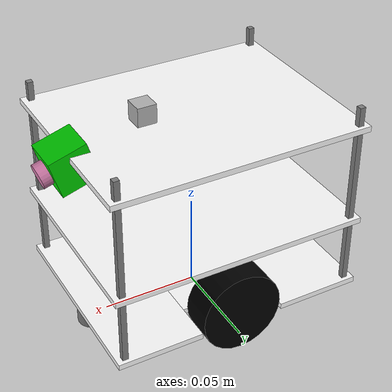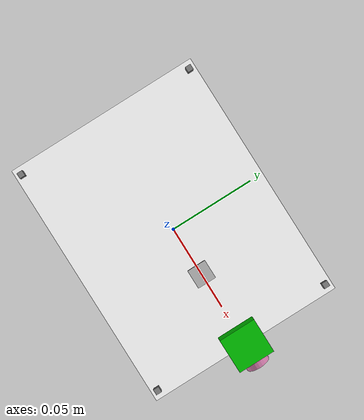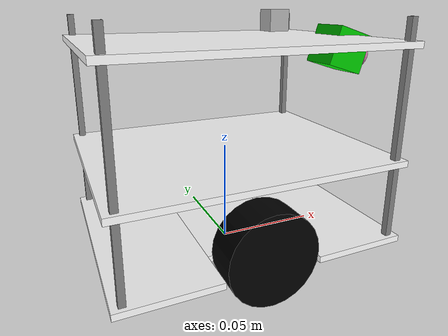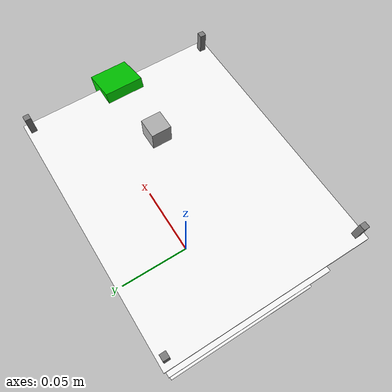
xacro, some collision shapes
<?xml version='1.0'?>

<robot name="rsaembot" xmlns:xacro="http://www.ros.org/wiki/xacro">
  <!-- Init colour -->
  <material name="black">
      <color rgba="0.0 0.0 0.0 1.0"/>
  </material>

  <material name="dark">
    <color rgba="0.3 0.3 0.3 1.0"/>
  </material>

  <material name="light_black">
    <color rgba="0.4 0.4 0.4 1.0"/>
  </material>

  <material name="blue">
    <color rgba="0.0 0.0 0.8 1.0"/>
  </material>

  <material name="green">
    <color rgba="0.0 0.8 0.0 1.0"/>
  </material>

  <material name="grey">
    <color rgba="0.5 0.5 0.5 1.0"/>
  </material>

  <material name="orange">
    <color rgba="1.0 0.4235 0.0392 1.0"/>
  </material>

  <material name="brown">
    <color rgba="0.8706 0.8118 0.7647 1.0"/>
  </material>

  <material name="red">
    <color rgba="0.8 0.0 0.0 1.0"/>
  </material>

  <material name="white">
    <color rgba="1.0 1.0 1.0 1.0"/>
  </material>

  <link name="base_footprint"/>

  <joint name="base_joint" type="fixed">
    <parent link="base_footprint"/>
    <child link="base_link"/>
    <origin xyz="0.0 0.0 0.010" rpy="0 0 0"/>
  </joint>

  <link name='base_link'>
    <pose>0 0 0.1 0 0 0</pose>

    <inertial>
      <mass value="15.0"/>
      <origin xyz="0.0 0 0.1" rpy=" 0 0 0"/>
      <inertia
          ixx="0.1" ixy="0" ixz="0"
          iyy="0.1" iyz="0"
          izz="0.1"
      />
    </inertial>

    <collision name='collision'>
      <geometry>
        <box size=".045 .105 .003"/>
      </geometry>
    </collision>

    <visual name='chassis_visual_base1'>
      <origin xyz="-0.045 0 0" rpy=" 0 0 0"/>
      <geometry>
        <box size=".045 .105 .003"/>
      </geometry>
      <material name="white"/>
    </visual>

    <collision name='collision'>
      <geometry>
        <box size=".045 .105 .003"/>
      </geometry>
    </collision>

    <visual name='chassis_visual_base2'>
      <origin xyz="0 0 0" rpy=" 0 0 0"/>
      <geometry>
        <box size=".045 .065 .003"/>
      </geometry>
      <material name="white"/>
    </visual>

    <collision name='collision'>
      <geometry>
        <box size=".045 .105 .003"/>
      </geometry>
    </collision>

    <visual name='chassis_visual_base3'>
      <origin xyz=".045 0 0" rpy=" 0 0 0"/>
      <geometry>
        <box size=".045 .105 .003"/>
      </geometry>
      <material name="white"/>
    </visual>

    <collision name='collision'>
      <geometry>
        <box size=".135 .105 .003"/>
      </geometry>
    </collision>

    <visual name='chassis_visual_mid'>
      <origin xyz="0 0 .038" rpy=" 0 0 0"/>
      <geometry>
        <box size=".135 .105 .003"/>
      </geometry>
      <material name="white"/>
    </visual>

    <collision name='collision'>
      <geometry>
        <box size=".135 .105 .003"/>
      </geometry>
    </collision>

    <visual name='chassis_visual_top'>
      <origin xyz="0 0 .091" rpy=" 0 0 0"/>
      <geometry>
        <box size=".135 .105 .003"/>
      </geometry>
      <material name="white"/>
    </visual>

    <collision name='collision'>
      <geometry>
        <box size=".003 .003 .009"/>
      </geometry>
    </collision>

    <visual name='chassis_visual_rod1'>
      <origin xyz=".063 .049 .019" rpy=" 0 0 0"/>
      <geometry>
        <box size=".003 .003 .035"/>
      </geometry>
      <material name="grey"/>
    </visual>

    <collision name='collision'>
      <geometry>
        <box size=".003 .003 .035"/>
      </geometry>
    </collision>

    <visual name='chassis_visual_rod2'>
      <origin xyz=".063 -0.049 .019" rpy=" 0 0 0"/>
      <geometry>
        <box size=".003 .003 .035"/>
      </geometry>
      <material name="grey"/>
    </visual>

    <collision name='collision'>
      <geometry>
        <box size=".003 .003 .035"/>
      </geometry>
    </collision>

    <visual name='chassis_visual_rod3'>
      <origin xyz="-0.063 -0.049 .019" rpy=" 0 0 0"/>
      <geometry>
        <box size=".003 .003 .035"/>
      </geometry>
      <material name="grey"/>
    </visual>

    <collision name='collision'>
      <geometry>
        <box size=".003 .003 .035"/>
      </geometry>
    </collision>

    <visual name='chassis_visual_rod4'>
      <origin xyz="-0.063 .049 .019" rpy=" 0 0 0"/>
      <geometry>
        <box size=".003 .003 .035"/>
      </geometry>
      <material name="grey"/>
    </visual>

   <collision name='collision'>
      <geometry>
        <box size=".003 .003 .05"/>
      </geometry>
    </collision>

    <visual name='chassis_visual_rod5'>
      <origin xyz=".063 .049 .0645" rpy=" 0 0 0"/>
      <geometry>
        <box size=".003 .003 .05"/>
      </geometry>
      <material name="grey"/>
    </visual>

    <collision name='collision'>
      <geometry>
        <box size=".003 .003 .05"/>
      </geometry>
    </collision>

    <visual name='chassis_visual_rod6'>
      <origin xyz=".063 -0.049 .0645" rpy=" 0 0 0"/>
      <geometry>
        <box size=".003 .003 .05"/>
      </geometry>
      <material name="grey"/>
    </visual>

    <collision name='collision'>
      <geometry>
        <box size=".003 .003 .05"/>
      </geometry>
    </collision>

    <visual name='chassis_visual_rod7'>
      <origin xyz="-0.063 -0.049 0.0645" rpy=" 0 0 0"/>
      <geometry>
        <box size=".003 .003 .05"/>
      </geometry>
      <material name="grey"/>
    </visual>

    <collision name='collision'>
      <geometry>
        <box size=".003 .003 .05"/>
      </geometry>
    </collision>

    <visual name='chassis_visual_rod8'>
      <origin xyz="-0.063 .049 0.0645" rpy=" 0 0 0"/>
      <geometry>
        <box size=".003 .003 .05"/>
      </geometry>
      <material name="grey"/>
    </visual>

     <visual name='chassis_visual_rod9'>
      <origin xyz=".063 .049 .0975" rpy=" 0 0 0"/>
      <geometry>
        <box size=".003 .003 .01"/>
      </geometry>
      <material name="grey"/>
    </visual>

    <collision name='collision'>
      <geometry>
        <box size=".003 .003 .01"/>
      </geometry>
    </collision>

    <visual name='chassis_visual_rod10'>
      <origin xyz=".063 -0.049 .0975" rpy=" 0 0 0"/>
      <geometry>
        <box size=".003 .003 .01"/>
      </geometry>
      <material name="grey"/>
    </visual>

    <collision name='collision'>
      <geometry>
        <box size=".003 .003 .01"/>
      </geometry>
    </collision>

    <visual name='chassis_visual_rod11'>
      <origin xyz="-0.063 -0.049 0.0975" rpy=" 0 0 0"/>
      <geometry>
        <box size=".003 .003 .01"/>
      </geometry>
      <material name="grey"/>
    </visual>

    <collision name='collision'>
      <geometry>
        <box size=".003 .003 .01"/>
      </geometry>
    </collision>

    <visual name='chassis_visual_rod12'>
      <origin xyz="-0.063 .049 0.0975" rpy=" 0 0 0"/>
      <geometry>
        <box size=".003 .003 .01"/>
      </geometry>
      <material name="grey"/>
    </visual>
  </link>

   <joint name="caster_front_joint" type="fixed">
    <axis xyz="0 0 0" />
    <origin xyz=".058 0 -0.01049" rpy="0 0 0"/>
    <parent link="base_link"/>
    <child link="caster_front"/>
  </joint>

  <link name="caster_front">
    <collision name='caster_front_rod_collision'>
      <origin xyz="0 0 0.003" rpy=" 0 0 0"/>
      <geometry>
        <cylinder radius="0.008" length="0.012"/>
      </geometry>
    </collision>

    <visual name='caster_front_rod_visual'>
      <origin xyz="0 0 0.003" rpy=" 0 0 0"/>
      <geometry>
        <cylinder radius="0.008" length="0.012"/>
      </geometry>
      <material name="grey"/>
    </visual>

    <collision name='caster_front_collision'>
      <origin xyz="0 0 0" rpy=" 0 0 0"/>
      <geometry>
        <sphere radius="0.006"/>
      </geometry>
      <material name="black"/>
      <surface>
        <friction>
          <ode>
            <mu>0</mu>
            <mu2>0</mu2>
            <slip1>1.0</slip1>
            <slip2>1.0</slip2>
          </ode>
        </friction>
      </surface>
    </collision>

    <visual name='caster_front_visual'>
      <origin xyz="0 0 0" rpy=" 0 0 0"/>
      <geometry>
        <sphere radius="0.006"/>
      </geometry>
      <material name="gray"/>
    </visual>
  </link>

  <joint name="caster_rear_joint" type="fixed">
    <axis xyz="0 0 0" />
    <origin xyz="-0.058 0 -0.01049" rpy="0 0 0"/>
    <parent link="base_link"/>
    <child link="caster_rear"/>
  </joint>

  <link name="caster_rear">
    <collision name='caster_rear_rod_collision'>
      <origin xyz="0 0 0.003" rpy=" 0 0 0"/>
      <geometry>
        <cylinder radius="0.008" length="0.012"/>
      </geometry>
    </collision>

    <visual name='caster_rear_rod_visual'>
      <origin xyz="0 0 0.003" rpy=" 0 0 0"/>
      <geometry>
        <cylinder radius="0.008" length="0.012"/>
      </geometry>
      <material name="grey"/>
    </visual>

    <collision name='caster_rear_collision'>
      <origin xyz="0 0 0" rpy=" 0 0 0"/>
      <geometry>
        <sphere radius=".006"/>
      </geometry>
      <surface>
        <friction>
          <ode>
            <mu>0</mu>
            <mu2>0</mu2>
            <slip1>1.0</slip1>
            <slip2>1.0</slip2>
          </ode>
        </friction>
      </surface>
    </collision>

    <visual name='caster_rear_visual'>
      <origin xyz="0 0 0" rpy=" 0 0 0"/>
      <geometry>
        <sphere radius=".006"/>
      </geometry>
      <material name="black"/>
    </visual>
  </link>

  <joint type="continuous" name="left_wheel_hinge">
    <origin xyz="0 .0435 .005" rpy="0 0 0"/>
    <child link="left_wheel"/>
    <parent link="base_link"/>
    <axis xyz="0 1 0" rpy="0 0 0"/>
    <limit effort="10000" velocity="1000"/>
    <joint_properties damping="1.0" friction="1.0"/>
  </joint>

  <link name="left_wheel">
    <collision name="collision">
      <origin xyz="0 0 0" rpy="0 1.5707 1.5707"/>
      <geometry>
        <cylinder radius="0.0215" length="0.0175"/>
      </geometry>
    </collision>
    <visual name="left_wheel_visual">
      <origin xyz="0 0 0" rpy="0 1.5707 1.5707"/>
      <geometry>
        <cylinder radius="0.0215" length="0.0175"/>
      </geometry>
    <material name="black"/>
    </visual>
    <inertial>
      <origin xyz="0 0 0" rpy="0 1.5707 1.5707"/>
      <mass value="5"/>
      <inertia
        ixx=".1" ixy="0.0" ixz="0.0"
        iyy=".1" iyz="0.0"
        izz=".1"/>
    </inertial>
  </link>

  <joint type="continuous" name="right_wheel_hinge">
    <origin xyz="0 -0.0435 .005" rpy="0 0 0"/>
    <child link="right_wheel"/>
    <parent link="base_link"/>
    <axis xyz="0 1 0" rpy="0 0 0"/>
    <limit effort="10000" velocity="1000"/>
    <joint_properties damping="1.0" friction="1.0"/>
  </joint>

  <link name="right_wheel">
    <collision name="collision">
      <origin xyz="0 0 0" rpy="0 1.5707 1.5707"/>
      <geometry>
        <cylinder radius="0.0215" length="0.0175"/>
      </geometry>
    </collision>
    <visual name="right_wheel_visual">
      <origin xyz="0 0 0" rpy="0 1.5707 1.5707"/>
      <geometry>
        <cylinder radius="0.0215" length="0.0175"/>
      </geometry>
    <material name="black"/>
    </visual>
    <inertial>
      <origin xyz="0 0 0" rpy="0 1.5707 1.5707"/>
      <mass value="5"/>
      <inertia
        ixx=".1" ixy="0.0" ixz="0.0"
        iyy=".1" iyz="0.0"
        izz=".1"/>
    </inertial>
  </link>

  <link name="camera">
    <collision>
      <origin xyz="-0.01 0 0" rpy="0 0 0"/>
      <geometry>
        <box size="0.02 0.02 0.02"/>
      </geometry>
    </collision>

    <visual>
      <origin xyz="-0.01 0 0" rpy="0 0 0"/>
      <geometry>
        <box size="0.02 0.02 0.02"/>
      </geometry>
      <material name="green"/>
    </visual>

    <visual>
      <origin xyz="0 0 0" rpy="0 1.5708 0"/>
      <geometry>
        <cylinder length="0.01" radius="0.0063" />
      </geometry>
    </visual>

    <inertial>
      <mass value="0.025" />
      <origin xyz="0 0 0" rpy="0 0 0"/>
      <box_inertia m="0.025" x="0.02" y="0.02" z="$0.02" />
      <inertia ixx="1e-6" ixy="0" ixz="0" iyy="1e-6" iyz="0" izz="1e-6" />
    </inertial>
  </link>

  <joint name="camera_joint" type="fixed">
    <axis xyz="0 1 0" />
    <origin xyz=".075 0 .082" rpy="0 .3 0"/>
    <parent link="base_link"/>
    <child link="camera"/>
  </joint>

  <!-- Laser -->
  <joint name="laser_joint" type="fixed">
    <axis xyz="0 1 0" />
    <origin xyz=".026 0 .12" rpy="0 0 0"/>
    <parent link="base_link"/>
    <child link="base_scan"/>
  </joint>

  <link name="base_scan">
    <collision>
      <origin xyz="0 0 -0.02" rpy="0 0 0"/>
      <geometry>
    <box size="0.01 0.01 0.01"/>
      </geometry>
    </collision>

    <visual>
	  <origin xyz="0 0 0" rpy="0 0 3.14"/>
      <geometry>
		<mesh filename="package://turtlebot3_description/meshes/sensors/lds.stl" scale="0.001 0.001 0.001"/>
      </geometry>
    </visual>

    <inertial>
      <mass value="1e-5" />
      <origin xyz="0 0 -0.02" rpy="0 0 0"/>
      <inertia ixx="1e-6" ixy="0" ixz="0" iyy="1e-6" iyz="0" izz="1e-6" />
    </inertial>
  </link>

  <joint name="imu_joint" type="fixed">
    <parent link="base_link"/>
    <child link="imu_link"/>
    <origin xyz="0 0 0.003" rpy="0 0 0"/>
  </joint>

  <link name="imu_link"/>

</robot>
